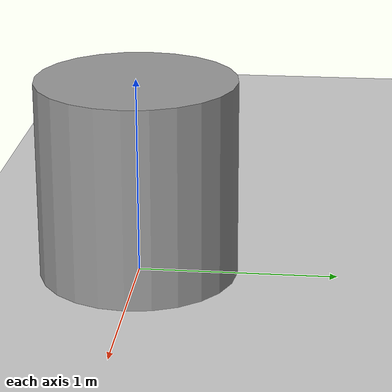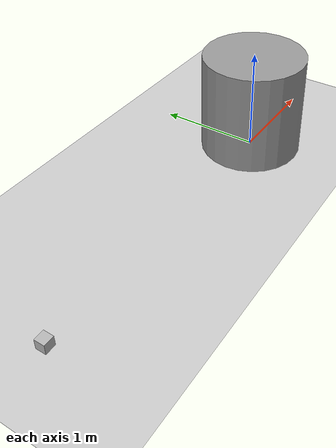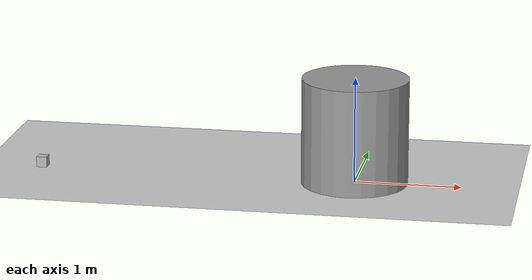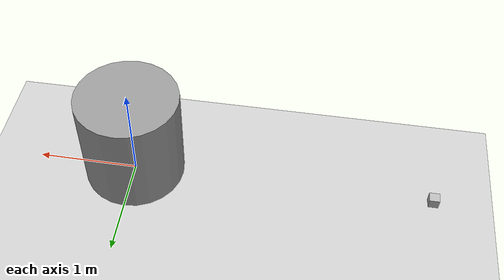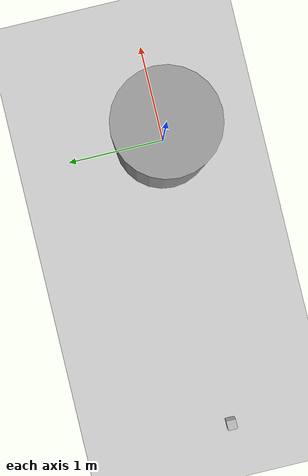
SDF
<sdf version="1.5">
 <world name="default">
  <light name="sun" type="directional">
   <pose>0 0 10 0 -0 0</pose>
   <diffuse>0.8 0.8 0.8 1</diffuse>
   <specular>0.2 0.2 0.2 1</specular>
   <attenuation>
    <range>1000</range>
    <constant>0.9</constant>
    <linear>0.01</linear>
    <quadratic>0.001</quadratic>
   </attenuation>
   <direction>-0.5 0.1 -0.9</direction>
  </light>
  <model name="ground_plane">
   <static>1</static>
   <link name="link">
    <collision name="collision">
     <geometry><plane><normal>0 0 1</normal><size>100 100</size></plane></geometry>
     <surface><friction><ode><mu>100</mu><mu2>50</mu2></ode></friction></surface>
    </collision>
    <visual name="visual">
     <cast_shadows>0</cast_shadows>
     <geometry><plane><normal>0 0 1</normal><size>100 100</size></plane></geometry>
     <material>
      <script><uri>file://media/materials/scripts/gazebo.material</uri><name>Gazebo/Grey</name></script>
     </material>
    </visual>
   </link>
  </model>
  <physics name="default_physics" default="0" type="ode">
   <max_step_size>0.001</max_step_size>
   <real_time_factor>1</real_time_factor>
   <real_time_update_rate>1000</real_time_update_rate>
   <gravity>0 0 -9.8</gravity>
   <magnetic_field>6e-06 2.3e-05 -4.2e-05</magnetic_field>
  </physics>
  <scene><ambient>0.4 0.4 0.4 1</ambient><background>0.7 0.7 0.7 1</background><shadows>1</shadows></scene>
  <spherical_coordinates>
   <surface_model>EARTH_WGS84</surface_model>
   <latitude_deg>0</latitude_deg>
   <longitude_deg>0</longitude_deg>
   <elevation>0</elevation>
   <heading_deg>0</heading_deg>
  </spherical_coordinates>
  <model name="camera">
   <pose>-3 -0 0.049998 8e-06 -3.2e-05 -1e-06</pose>
   <link name="link">
    <inertial>
     <mass>0.1</mass>
     <inertia>
      <ixx>0.000166667</ixx>
      <iyy>0.000166667</iyy>
      <izz>0.000166667</izz>
      <ixy>0</ixy>
      <ixz>0</ixz>
      <iyz>0</iyz>
     </inertia>
    </inertial>
    <collision name="collision"><geometry><box><size>0.1 0.1 0.1</size></box></geometry></collision>
    <visual name="visual"><geometry><box><size>0.1 0.1 0.1</size></box></geometry></visual>
    <sensor name="camera" type="camera">
     <camera name="__default__">
      <horizontal_fov>1.047</horizontal_fov>
      <image><width>320</width><height>240</height></image>
      <clip><near>0.1</near><far>100</far></clip>
     </camera>
     <always_on>1</always_on>
     <update_rate>30</update_rate>
     <visualize>1</visualize>
    </sensor>
   </link>
  </model>
  <model name="unit_cylinder_1">
   <pose>2e-06 -2e-06 0.499997 3e-06 4e-06 -0</pose>
   <link name="link">
    <inertial>
     <mass>1</mass>
     <inertia><ixx>0.145833</ixx><ixy>0</ixy><ixz>0</ixz><iyy>0.145833</iyy><iyz>0</iyz><izz>0.125</izz></inertia>
    </inertial>
    <collision name="collision">
     <geometry><cylinder><radius>0.5</radius><length>1</length></cylinder></geometry>
    </collision>
    <visual name="visual">
     <geometry><cylinder><radius>0.5</radius><length>1</length></cylinder></geometry>
     <material>
      <script><name>Gazebo/Grey</name><uri>file://media/materials/scripts/gazebo.material</uri></script>
     </material>
    </visual>
   </link>
  </model>
 </world>
</sdf>
